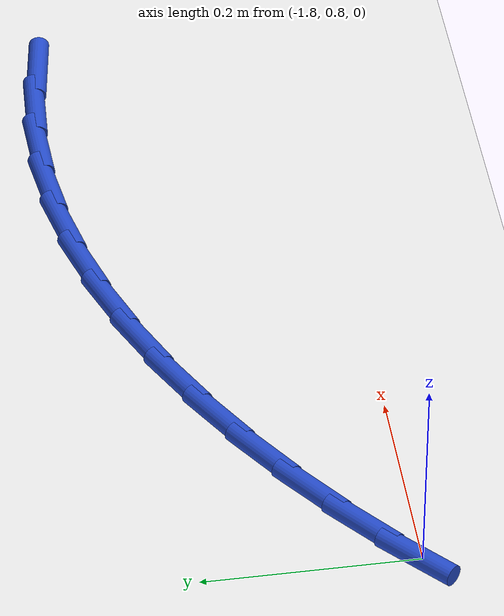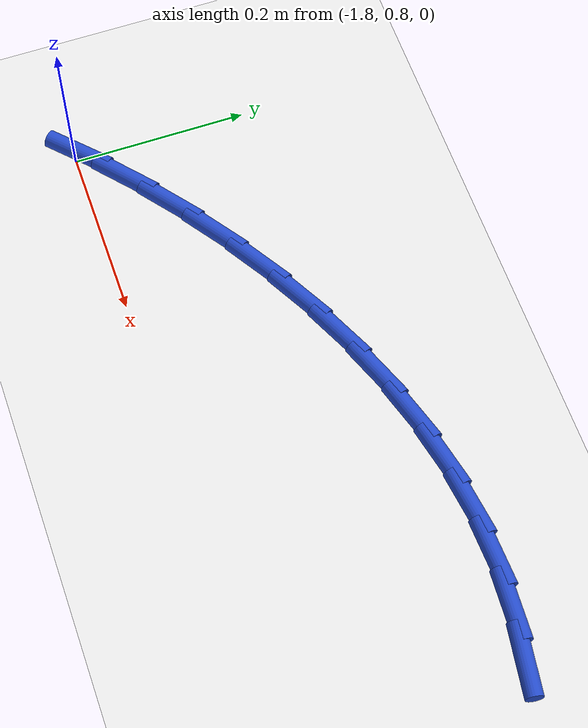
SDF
<sdf version="1.6">
 <world name="default">
  <model name="ground_plane">
   <static>1</static>
   <link name="link">
    <collision name="collision">
     <geometry><plane><normal>0 0 1</normal><size>100 100</size></plane></geometry>
     <surface><friction><ode><mu>100</mu><mu2>50</mu2></ode></friction></surface>
    </collision>
    <visual name="visual">
     <cast_shadows>0</cast_shadows>
     <geometry><plane><normal>0 0 1</normal><size>100 100</size></plane></geometry>
     <material>
      <script><uri>file://media/materials/scripts/gazebo.material</uri><name>Gazebo/WhiteGlow</name></script>
     </material>
    </visual>
   </link>
  </model>
  <model name="line">
   <link name="link_27">
    <pose>-1.0825562132217432 1.058698067566875 0.01 0 1.57 -0.15431292659242205</pose>
    <collision name="collision">
     <geometry><cylinder><radius>0.01</radius><length>0.08</length></cylinder></geometry>
    </collision>
    <visual name="visual">
     <material>
      <script><name>Gazebo/Blue</name><uri>file://media/materials/scripts/gazebo.material</uri></script>
     </material>
     <geometry><cylinder><radius>0.01</radius><length>0.08</length></cylinder></geometry>
    </visual>
   </link>
   <link name="link_28">
    <pose>-1.1404103328038047 1.067697250683265 0.01 0 1.57 -0.06302332781632644</pose>
    <collision name="collision">
     <geometry><cylinder><radius>0.01</radius><length>0.08</length></cylinder></geometry>
    </collision>
    <visual name="visual">
     <material>
      <script><name>Gazebo/Blue</name><uri>file://media/materials/scripts/gazebo.material</uri></script>
     </material>
     <geometry><cylinder><radius>0.01</radius><length>0.08</length></cylinder></geometry>
    </visual>
   </link>
   <link name="link_29">
    <pose>-1.1986153357941447 1.0713703881158212 0.01 0 1.57 0.0357630046150037</pose>
    <collision name="collision">
     <geometry><cylinder><radius>0.01</radius><length>0.08</length></cylinder></geometry>
    </collision>
    <visual name="visual">
     <material>
      <script><name>Gazebo/Blue</name><uri>file://media/materials/scripts/gazebo.material</uri></script>
     </material>
     <geometry><cylinder><radius>0.01</radius><length>0.08</length></cylinder></geometry>
    </visual>
   </link>
   <link name="link_30">
    <pose>-1.2571505344031058 1.0692761006023486 0.01 0 1.57 0.12902146411881935</pose>
    <collision name="collision">
     <geometry><cylinder><radius>0.01</radius><length>0.08</length></cylinder></geometry>
    </collision>
    <visual name="visual">
     <material>
      <script><name>Gazebo/Blue</name><uri>file://media/materials/scripts/gazebo.material</uri></script>
     </material>
     <geometry><cylinder><radius>0.01</radius><length>0.08</length></cylinder></geometry>
    </visual>
   </link>
   <link name="link_31">
    <pose>-1.3157905791086406 1.0616680131477574 0.01 0 1.57 0.21463984728072116</pose>
    <collision name="collision">
     <geometry><cylinder><radius>0.01</radius><length>0.08</length></cylinder></geometry>
    </collision>
    <visual name="visual">
     <material>
      <script><name>Gazebo/Blue</name><uri>file://media/materials/scripts/gazebo.material</uri></script>
     </material>
     <geometry><cylinder><radius>0.01</radius><length>0.08</length></cylinder></geometry>
    </visual>
   </link>
   <link name="link_32">
    <pose>-1.3742751521917793 1.0489184981446198 0.01 0 1.57 0.29300335517830645</pose>
    <collision name="collision">
     <geometry><cylinder><radius>0.01</radius><length>0.08</length></cylinder></geometry>
    </collision>
    <visual name="visual">
     <material>
      <script><name>Gazebo/Blue</name><uri>file://media/materials/scripts/gazebo.material</uri></script>
     </material>
     <geometry><cylinder><radius>0.01</radius><length>0.08</length></cylinder></geometry>
    </visual>
   </link>
   <link name="link_33">
    <pose>-1.432343935933551 1.0313999279855082 0.01 0 1.57 0.36476044465008306</pose>
    <collision name="collision">
     <geometry><cylinder><radius>0.01</radius><length>0.08</length></cylinder></geometry>
    </collision>
    <visual name="visual">
     <material>
      <script><name>Gazebo/Blue</name><uri>file://media/materials/scripts/gazebo.material</uri></script>
     </material>
     <geometry><cylinder><radius>0.01</radius><length>0.08</length></cylinder></geometry>
    </visual>
   </link>
   <link name="link_34">
    <pose>-1.4897366126149842 1.009484675062994 0.01 0 1.57 0.43069549951071856</pose>
    <collision name="collision">
     <geometry><cylinder><radius>0.01</radius><length>0.08</length></cylinder></geometry>
    </collision>
    <visual name="visual">
     <material>
      <script><name>Gazebo/Blue</name><uri>file://media/materials/scripts/gazebo.material</uri></script>
     </material>
     <geometry><cylinder><radius>0.01</radius><length>0.08</length></cylinder></geometry>
    </visual>
   </link>
   <link name="link_35">
    <pose>-1.5461928645171088 0.9835451117696482 0.01 0 1.57 0.4916431376127561</pose>
    <collision name="collision">
     <geometry><cylinder><radius>0.01</radius><length>0.08</length></cylinder></geometry>
    </collision>
    <visual name="visual">
     <material>
      <script><name>Gazebo/Blue</name><uri>file://media/materials/scripts/gazebo.material</uri></script>
     </material>
     <geometry><cylinder><radius>0.01</radius><length>0.08</length></cylinder></geometry>
    </visual>
   </link>
   <link name="link_36">
    <pose>-1.6014523739209536 0.9539536104980435 0.01 0 1.57 0.5484383236892291</pose>
    <collision name="collision">
     <geometry><cylinder><radius>0.01</radius><length>0.08</length></cylinder></geometry>
    </collision>
    <visual name="visual">
     <material>
      <script><name>Gazebo/Blue</name><uri>file://media/materials/scripts/gazebo.material</uri></script>
     </material>
     <geometry><cylinder><radius>0.01</radius><length>0.08</length></cylinder></geometry>
    </visual>
   </link>
   <link name="link_37">
    <pose>-1.655254823107548 0.9210825436407513 0.01 0 1.57 0.6018931703664108</pose>
    <collision name="collision">
     <geometry><cylinder><radius>0.01</radius><length>0.08</length></cylinder></geometry>
    </collision>
    <visual name="visual">
     <material>
      <script><name>Gazebo/Blue</name><uri>file://media/materials/scripts/gazebo.material</uri></script>
     </material>
     <geometry><cylinder><radius>0.01</radius><length>0.08</length></cylinder></geometry>
    </visual>
   </link>
   <link name="link_38">
    <pose>-1.7073398943579206 0.8853042835903434 0.01 0 1.57 0.6527935115407418</pose>
    <collision name="collision">
     <geometry><cylinder><radius>0.01</radius><length>0.08</length></cylinder></geometry>
    </collision>
    <visual name="visual">
     <material>
      <script><name>Gazebo/Blue</name><uri>file://media/materials/scripts/gazebo.material</uri></script>
     </material>
     <geometry><cylinder><radius>0.01</radius><length>0.08</length></cylinder></geometry>
    </visual>
   </link>
   <link name="link_39">
    <pose>-1.757447284117676 0.8469910858884839 0.01 0 1.57 0.7026745728225076</pose>
    <collision name="collision">
     <geometry><cylinder><radius>0.01</radius><length>0.08</length></cylinder></geometry>
    </collision>
    <visual name="visual">
     <material>
      <script><name>Gazebo/Blue</name><uri>file://media/materials/scripts/gazebo.material</uri></script>
     </material>
     <geometry><cylinder><radius>0.01</radius><length>0.08</length></cylinder></geometry>
    </visual>
   </link>
   <link name="link_40">
    <pose>-1.8053252424547335 0.8064446428211748 0.01 0 1.57 0.7541691511353875</pose>
    <collision name="collision">
     <geometry><cylinder><radius>0.01</radius><length>0.08</length></cylinder></geometry>
    </collision>
    <visual name="visual">
     <material>
      <script><name>Gazebo/Blue</name><uri>file://media/materials/scripts/gazebo.material</uri></script>
     </material>
     <geometry><cylinder><radius>0.01</radius><length>0.08</length></cylinder></geometry>
    </visual>
   </link>
  </model>
 </world>
</sdf>
